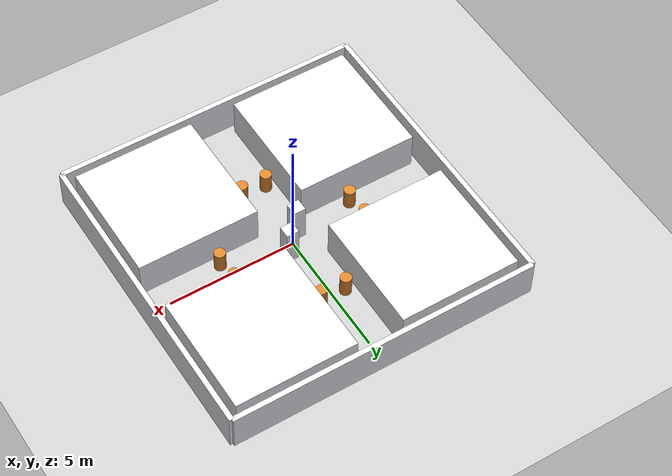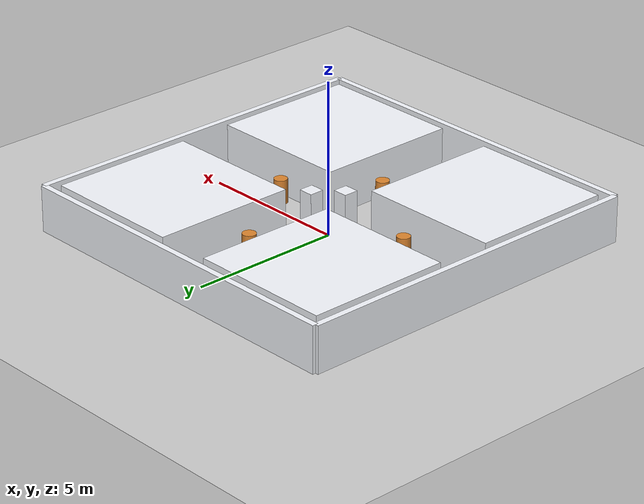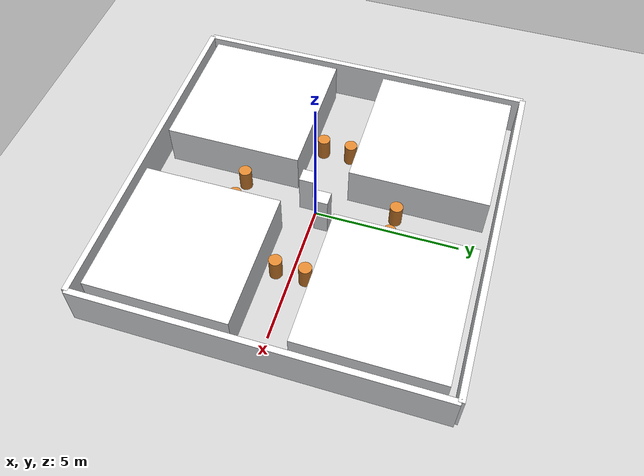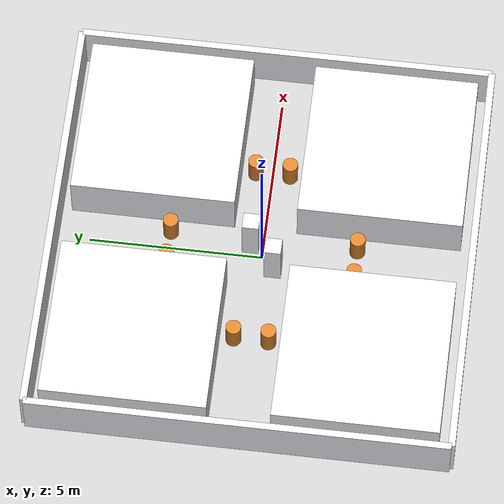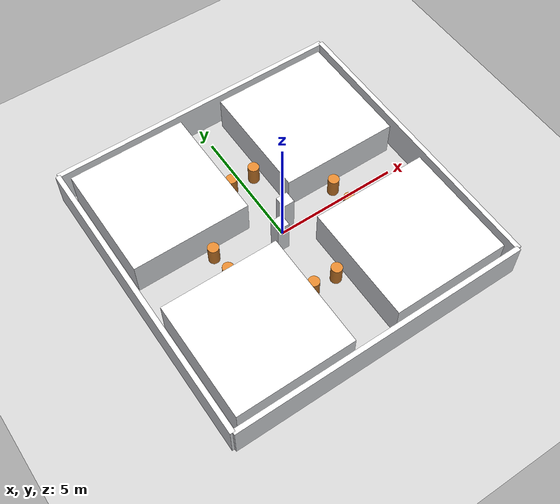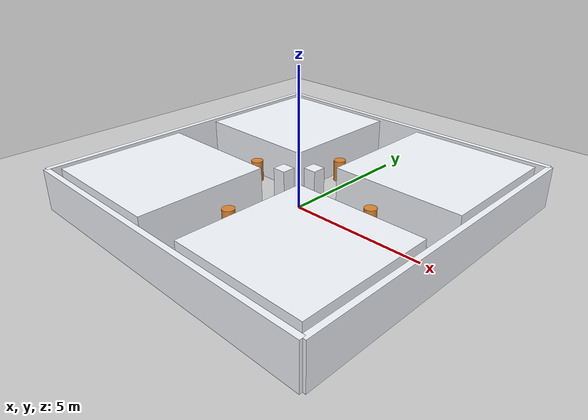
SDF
<?xml version="1.0" ?>
<sdf version="1.6">
<world name="intersection">
  <!-- Gazebo ROS State Plugin - provides /set_entity_state service -->
  <plugin name='gazebo_ros_state' filename='libgazebo_ros_state.so'>
    <ros>
      <argument>model_states:=model_states_demo</argument>
    </ros>
    <update_rate>1.0</update_rate>
  </plugin>

  <include>
    <uri>model://ground_plane</uri>
  </include>
  <light name="studio_sun" type="directional">
    <cast_shadows>1</cast_shadows>
    <pose>0 0 18 0 -0.35 0.2</pose>
    <diffuse>0.96 0.94 0.90 1</diffuse>
    <specular>0.16 0.16 0.16 1</specular>
    <attenuation>
      <range>1000</range>
      <constant>0.82</constant>
      <linear>0.006</linear>
      <quadratic>0.0008</quadratic>
    </attenuation>
    <direction>-0.35 0.18 -0.92</direction>
  </light>
  <light name="fill_light" type="point">
    <pose>0 0 8 0 0 0</pose>
    <diffuse>0.40 0.45 0.50 1</diffuse>
    <specular>0.03 0.03 0.03 1</specular>
    <attenuation>
      <range>28</range>
      <constant>0.72</constant>
      <linear>0.02</linear>
      <quadratic>0.001</quadratic>
    </attenuation>
  </light>
  <scene>
    <ambient>0.56 0.58 0.62 1</ambient>
    <background>0.90 0.93 0.98 1</background>
    <shadows>1</shadows>
  </scene>

  <model name="b_north">
    <static>true</static>
    <pose>0 6.0 0.75 0 0 0</pose>
    <link name="link">
      <collision name="collision">
        <geometry>
          <box><size>12.0 0.2 1.5</size></box>
        </geometry>
      </collision>
      <visual name="visual">
        <geometry>
          <box><size>12.0 0.2 1.5</size></box>
        </geometry>
        <cast_shadows>true</cast_shadows>
        <material>
          <ambient>0.88 0.90 0.94 1</ambient>
          <diffuse>0.96 0.97 0.99 1</diffuse>
          <specular>0.08 0.08 0.09 1</specular>
          <emissive>0 0 0 1</emissive>
        </material>
      </visual>
    </link>
  </model>

  <model name="b_south">
    <static>true</static>
    <pose>0 -6.0 0.75 0 0 0</pose>
    <link name="link">
      <collision name="collision">
        <geometry>
          <box><size>12.0 0.2 1.5</size></box>
        </geometry>
      </collision>
      <visual name="visual">
        <geometry>
          <box><size>12.0 0.2 1.5</size></box>
        </geometry>
        <cast_shadows>true</cast_shadows>
        <material>
          <ambient>0.88 0.90 0.94 1</ambient>
          <diffuse>0.96 0.97 0.99 1</diffuse>
          <specular>0.08 0.08 0.09 1</specular>
          <emissive>0 0 0 1</emissive>
        </material>
      </visual>
    </link>
  </model>

  <model name="b_east">
    <static>true</static>
    <pose>6.0 0 0.75 0 0 0</pose>
    <link name="link">
      <collision name="collision">
        <geometry>
          <box><size>0.2 12.0 1.5</size></box>
        </geometry>
      </collision>
      <visual name="visual">
        <geometry>
          <box><size>0.2 12.0 1.5</size></box>
        </geometry>
        <cast_shadows>true</cast_shadows>
        <material>
          <ambient>0.88 0.90 0.94 1</ambient>
          <diffuse>0.96 0.97 0.99 1</diffuse>
          <specular>0.08 0.08 0.09 1</specular>
          <emissive>0 0 0 1</emissive>
        </material>
      </visual>
    </link>
  </model>

  <model name="b_west">
    <static>true</static>
    <pose>-6.0 0 0.75 0 0 0</pose>
    <link name="link">
      <collision name="collision">
        <geometry>
          <box><size>0.2 12.0 1.5</size></box>
        </geometry>
      </collision>
      <visual name="visual">
        <geometry>
          <box><size>0.2 12.0 1.5</size></box>
        </geometry>
        <cast_shadows>true</cast_shadows>
        <material>
          <ambient>0.88 0.90 0.94 1</ambient>
          <diffuse>0.96 0.97 0.99 1</diffuse>
          <specular>0.08 0.08 0.09 1</specular>
          <emissive>0 0 0 1</emissive>
        </material>
      </visual>
    </link>
  </model>

  <model name="quad_nn">
    <static>true</static>
    <pose>-3.27 -3.27 0.75 0 0 0</pose>
    <link name="link">
      <collision name="collision">
        <geometry>
          <box><size>4.74 4.74 1.5</size></box>
        </geometry>
      </collision>
      <visual name="visual">
        <geometry>
          <box><size>4.74 4.74 1.5</size></box>
        </geometry>
        <cast_shadows>true</cast_shadows>
        <material>
          <ambient>0.88 0.90 0.94 1</ambient>
          <diffuse>0.96 0.97 0.99 1</diffuse>
          <specular>0.08 0.08 0.09 1</specular>
          <emissive>0 0 0 1</emissive>
        </material>
      </visual>
    </link>
  </model>

  <model name="quad_np">
    <static>true</static>
    <pose>-3.27 3.27 0.75 0 0 0</pose>
    <link name="link">
      <collision name="collision">
        <geometry>
          <box><size>4.74 4.74 1.5</size></box>
        </geometry>
      </collision>
      <visual name="visual">
        <geometry>
          <box><size>4.74 4.74 1.5</size></box>
        </geometry>
        <cast_shadows>true</cast_shadows>
        <material>
          <ambient>0.88 0.90 0.94 1</ambient>
          <diffuse>0.96 0.97 0.99 1</diffuse>
          <specular>0.08 0.08 0.09 1</specular>
          <emissive>0 0 0 1</emissive>
        </material>
      </visual>
    </link>
  </model>

  <model name="quad_pn">
    <static>true</static>
    <pose>3.27 -3.27 0.75 0 0 0</pose>
    <link name="link">
      <collision name="collision">
        <geometry>
          <box><size>4.74 4.74 1.5</size></box>
        </geometry>
      </collision>
      <visual name="visual">
        <geometry>
          <box><size>4.74 4.74 1.5</size></box>
        </geometry>
        <cast_shadows>true</cast_shadows>
        <material>
          <ambient>0.88 0.90 0.94 1</ambient>
          <diffuse>0.96 0.97 0.99 1</diffuse>
          <specular>0.08 0.08 0.09 1</specular>
          <emissive>0 0 0 1</emissive>
        </material>
      </visual>
    </link>
  </model>

  <model name="quad_pp">
    <static>true</static>
    <pose>3.27 3.27 0.75 0 0 0</pose>
    <link name="link">
      <collision name="collision">
        <geometry>
          <box><size>4.74 4.74 1.5</size></box>
        </geometry>
      </collision>
      <visual name="visual">
        <geometry>
          <box><size>4.74 4.74 1.5</size></box>
        </geometry>
        <cast_shadows>true</cast_shadows>
        <material>
          <ambient>0.88 0.90 0.94 1</ambient>
          <diffuse>0.96 0.97 0.99 1</diffuse>
          <specular>0.08 0.08 0.09 1</specular>
          <emissive>0 0 0 1</emissive>
        </material>
      </visual>
    </link>
  </model>

  <model name="center_block1">
    <static>true</static>
    <pose>-0.36 -0.36 0.75 0 0 0</pose>
    <link name="link">
      <collision name="collision">
        <geometry>
          <box><size>0.48 0.48 1.5</size></box>
        </geometry>
      </collision>
      <visual name="visual">
        <geometry>
          <box><size>0.48 0.48 1.5</size></box>
        </geometry>
        <cast_shadows>true</cast_shadows>
        <material>
          <ambient>0.88 0.90 0.94 1</ambient>
          <diffuse>0.96 0.97 0.99 1</diffuse>
          <specular>0.08 0.08 0.09 1</specular>
          <emissive>0 0 0 1</emissive>
        </material>
      </visual>
    </link>
  </model>

  <model name="center_block2">
    <static>true</static>
    <pose>0.36 0.36 0.75 0 0 0</pose>
    <link name="link">
      <collision name="collision">
        <geometry>
          <box><size>0.48 0.48 1.5</size></box>
        </geometry>
      </collision>
      <visual name="visual">
        <geometry>
          <box><size>0.48 0.48 1.5</size></box>
        </geometry>
        <cast_shadows>true</cast_shadows>
        <material>
          <ambient>0.88 0.90 0.94 1</ambient>
          <diffuse>0.96 0.97 0.99 1</diffuse>
          <specular>0.08 0.08 0.09 1</specular>
          <emissive>0 0 0 1</emissive>
        </material>
      </visual>
    </link>
  </model>

  <model name="dyn_obs_0">
    <static>true</static>
    <pose>-2.7  0.5 0.4 0 0 0</pose>
    <link name="link">
      <collision name="collision"><geometry><cylinder><radius>0.22</radius><length>0.8</length></cylinder></geometry></collision>
      <visual name="visual"><geometry><cylinder><radius>0.22</radius><length>0.8</length></cylinder></geometry>
        <cast_shadows>true</cast_shadows>
        <material><ambient>0.52 0.30 0.10 1</ambient><diffuse>0.86 0.52 0.18 1</diffuse><specular>0.08 0.06 0.04 1</specular><emissive>0 0 0 1</emissive></material></visual>
    </link>
  </model>
  <model name="dyn_obs_1">
    <static>true</static>
    <pose>-2.7 -0.5 0.4 0 0 0</pose>
    <link name="link">
      <collision name="collision"><geometry><cylinder><radius>0.22</radius><length>0.8</length></cylinder></geometry></collision>
      <visual name="visual"><geometry><cylinder><radius>0.22</radius><length>0.8</length></cylinder></geometry>
        <cast_shadows>true</cast_shadows>
        <material><ambient>0.52 0.30 0.10 1</ambient><diffuse>0.86 0.52 0.18 1</diffuse><specular>0.08 0.06 0.04 1</specular><emissive>0 0 0 1</emissive></material></visual>
    </link>
  </model>
  <model name="dyn_obs_2">
    <static>true</static>
    <pose> 2.7  0.5 0.4 0 0 0</pose>
    <link name="link">
      <collision name="collision"><geometry><cylinder><radius>0.22</radius><length>0.8</length></cylinder></geometry></collision>
      <visual name="visual"><geometry><cylinder><radius>0.22</radius><length>0.8</length></cylinder></geometry>
        <cast_shadows>true</cast_shadows>
        <material><ambient>0.52 0.30 0.10 1</ambient><diffuse>0.86 0.52 0.18 1</diffuse><specular>0.08 0.06 0.04 1</specular><emissive>0 0 0 1</emissive></material></visual>
    </link>
  </model>
  <model name="dyn_obs_3">
    <static>true</static>
    <pose> 2.7 -0.5 0.4 0 0 0</pose>
    <link name="link">
      <collision name="collision"><geometry><cylinder><radius>0.22</radius><length>0.8</length></cylinder></geometry></collision>
      <visual name="visual"><geometry><cylinder><radius>0.22</radius><length>0.8</length></cylinder></geometry>
        <cast_shadows>true</cast_shadows>
        <material><ambient>0.52 0.30 0.10 1</ambient><diffuse>0.86 0.52 0.18 1</diffuse><specular>0.08 0.06 0.04 1</specular><emissive>0 0 0 1</emissive></material></visual>
    </link>
  </model>
  <model name="dyn_obs_4">
    <static>true</static>
    <pose> 0.5 -2.7 0.4 0 0 0</pose>
    <link name="link">
      <collision name="collision"><geometry><cylinder><radius>0.22</radius><length>0.8</length></cylinder></geometry></collision>
      <visual name="visual"><geometry><cylinder><radius>0.22</radius><length>0.8</length></cylinder></geometry>
        <cast_shadows>true</cast_shadows>
        <material><ambient>0.52 0.30 0.10 1</ambient><diffuse>0.86 0.52 0.18 1</diffuse><specular>0.08 0.06 0.04 1</specular><emissive>0 0 0 1</emissive></material></visual>
    </link>
  </model>
  <model name="dyn_obs_5">
    <static>true</static>
    <pose>-0.5 -2.7 0.4 0 0 0</pose>
    <link name="link">
      <collision name="collision"><geometry><cylinder><radius>0.22</radius><length>0.8</length></cylinder></geometry></collision>
      <visual name="visual"><geometry><cylinder><radius>0.22</radius><length>0.8</length></cylinder></geometry>
        <cast_shadows>true</cast_shadows>
        <material><ambient>0.52 0.30 0.10 1</ambient><diffuse>0.86 0.52 0.18 1</diffuse><specular>0.08 0.06 0.04 1</specular><emissive>0 0 0 1</emissive></material></visual>
    </link>
  </model>
  <model name="dyn_obs_6">
    <static>true</static>
    <pose> 0.5  2.7 0.4 0 0 0</pose>
    <link name="link">
      <collision name="collision"><geometry><cylinder><radius>0.22</radius><length>0.8</length></cylinder></geometry></collision>
      <visual name="visual"><geometry><cylinder><radius>0.22</radius><length>0.8</length></cylinder></geometry>
        <cast_shadows>true</cast_shadows>
        <material><ambient>0.52 0.30 0.10 1</ambient><diffuse>0.86 0.52 0.18 1</diffuse><specular>0.08 0.06 0.04 1</specular><emissive>0 0 0 1</emissive></material></visual>
    </link>
  </model>
  <model name="dyn_obs_7">
    <static>true</static>
    <pose>-0.5  2.7 0.4 0 0 0</pose>
    <link name="link">
      <collision name="collision"><geometry><cylinder><radius>0.22</radius><length>0.8</length></cylinder></geometry></collision>
      <visual name="visual"><geometry><cylinder><radius>0.22</radius><length>0.8</length></cylinder></geometry>
        <cast_shadows>true</cast_shadows>
        <material><ambient>0.52 0.30 0.10 1</ambient><diffuse>0.86 0.52 0.18 1</diffuse><specular>0.08 0.06 0.04 1</specular><emissive>0 0 0 1</emissive></material></visual>
    </link>
  </model>
</world>
</sdf>
